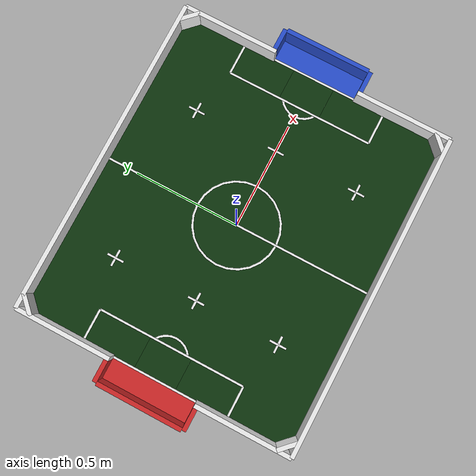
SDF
<?xml version="1.0" ?>
<sdf version="1.6">
  <model name="campo_vss">
    <static>true</static>
    <link name="link">
      <visual name="base_visual">
        <geometry>
          <box>
            <size>1.5 1.3 0.01</size>
          </box>
        </geometry>
        <material>
          <ambient>0.05 0.2 0.05 1</ambient>
          <diffuse>0.05 0.2 0.05 1</diffuse>
        </material>
      </visual>
      <collision name="base_collision">
        <geometry>
          <box>
            <size>1.5 1.3 0.01</size>
          </box>
        </geometry>
      </collision>

      <!-- Parede Norte -->
      <visual name="wall_north_visual">
        <pose>0 0.65 0.05 0 0 0</pose>
        <geometry><box><size>1.5 0.02 0.1</size></box></geometry>
        <material><script><name>Gazebo/White</name></script></material>
      </visual>
      <collision name="wall_north_collision">
        <pose>0 0.65 0.05 0 0 0</pose>
        <geometry><box><size>1.5 0.02 0.1</size></box></geometry>
      </collision>

      <!-- Parede Sul -->
      <visual name="wall_south_visual">
        <pose>0 -0.65 0.05 0 0 0</pose>
        <geometry><box><size>1.5 0.02 0.1</size></box></geometry>
        <material><script><name>Gazebo/White</name></script></material>
      </visual>
      <collision name="wall_south_collision">
        <pose>0 -0.65 0.05 0 0 0</pose>
        <geometry><box><size>1.5 0.02 0.1</size></box></geometry>
      </collision>

      <!-- Parede Oeste/Norte -->
      <visual name="wall_west_north_visual">
        <pose>-0.75 0.425 0.05 0 0 0</pose>
        <geometry><box><size>0.02 0.45 0.1</size></box></geometry>
        <material><script><name>Gazebo/White</name></script></material>
      </visual>
      <collision name="wall_west_north_collision">
        <pose>-0.75 0.425 0.05 0 0 0</pose>
        <geometry><box><size>0.02 0.45 0.1</size></box></geometry>
      </collision>

      <!-- Escanteio Oeste/Norte-->
      <visual name="wall_west_north_corner_visual">
        <pose>-0.715 0.615 0.05 0 0 0.785</pose>
        <geometry><box><size>0.0989 0.02 0.1</size></box></geometry>
        <material><script><name>Gazebo/White</name></script></material>
      </visual>
      <collision name="wall_west_north_corner_collision">
        <pose>-0.715 0.615 0.05 0 0 0.785</pose>
        <geometry><box><size>0.0989 0.02 0.1</size></box></geometry>
      </collision>

      <!-- Parede Oeste/Sul -->
      <visual name="wall_west_south_visual">
        <pose>-0.75 -0.425 0.05 0 0 0</pose>
        <geometry><box><size>0.02 0.45 0.1</size></box></geometry>
        <material><script><name>Gazebo/White</name></script></material>
      </visual>
      <collision name="wall_west_south_collision">
        <pose>-0.75 -0.425 0.05 0 0 0</pose>
        <geometry><box><size>0.02 0.45 0.1</size></box></geometry>
      </collision>

      <!-- Escanteio Oeste/Sul -->
      <visual name="wall_west_south_corner_visual">
        <pose>-0.715 -0.615 0.05 0 0 -0.785</pose>
        <geometry><box><size>0.0989 0.02 0.1</size></box></geometry>
        <material><script><name>Gazebo/White</name></script></material>
      </visual>
      <collision name="wall_west_south_corner_collision">
        <pose>-0.715 -0.615 0.05 0 0 -0.785</pose>
        <geometry><box><size>0.0989 0.02 0.1</size></box></geometry>
      </collision>

      <!-- Parede Leste/Norte -->
      <visual name="wall_east_north_visual">
        <pose>0.75 0.425 0.05 0 0 0</pose>
        <geometry><box><size>0.02 0.45 0.1</size></box></geometry>
        <material><script><name>Gazebo/White</name></script></material>
      </visual>
      <collision name="wall_east_north_collision">
        <pose>0.75 0.425 0.05 0 0 0</pose>
        <geometry><box><size>0.02 0.45 0.1</size></box></geometry>
      </collision>

      <!-- Escantei Leste/Norte -->
      <visual name="wall_east_north_corner_visual">
        <pose>0.715 0.615 0.05 0 0 -0.785</pose>
        <geometry><box><size>0.0989 0.02 0.1</size></box></geometry>
        <material><script><name>Gazebo/White</name></script></material>
      </visual>
      <collision name="wall_east_north_corner_collision">
        <pose>0.715 0.615 0.05 0 0 -0.785</pose>
        <geometry><box><size>0.0989 0.02 0.1</size></box></geometry>
      </collision>

      <visual name="wall_east_south_visual">
        <pose>0.75 -0.425 0.05 0 0 0</pose>
        <geometry><box><size>0.02 0.45 0.1</size></box></geometry>
        <material><script><name>Gazebo/White</name></script></material>
      </visual>
      <collision name="wall_east_south_collision">
        <pose>0.75 -0.425 0.05 0 0 0</pose>
        <geometry><box><size>0.02 0.45 0.1</size></box></geometry>
      </collision>

      <visual name="wall_east_south_corner_visual">
        <pose>0.715 -0.615 0.05 0 0 0.785</pose>
        <geometry><box><size>0.0989 0.02 0.1</size></box></geometry>
        <material><script><name>Gazebo/White</name></script></material>
      </visual>
      <collision name="wall_east_south_corner_collision">
        <pose>0.715 -0.615 0.05 0 0 0.785</pose>
        <geometry><box><size>0.0989 0.02 0.1</size></box></geometry>
      </collision>

      <visual name="goal_west_floor_visual">
        <pose>-0.8 0 0 0 0 0</pose>
        <geometry><box><size>0.1 0.4 0.01</size></box></geometry>
        <material><script><name>Gazebo/Red</name></script></material>
      </visual>
      <collision name="goal_west_floor_collision">
        <pose>-0.8 0 0 0 0 0</pose>
        <geometry><box><size>0.1 0.4 0.01</size></box></geometry>
      </collision>
      <visual name="goal_west_wall_01_visual">
        <pose>-0.86 0 0.05 0 0 0</pose>
        <geometry><box><size>0.02 0.4 0.1</size></box></geometry>
        <material><script><name>Gazebo/Red</name></script></material>
      </visual>
      <collision name="goal_west_wall_01_collision">
        <pose>-0.86 0 0.05 0 0 0</pose>
        <geometry><box><size>0.4 0.02 0.1</size></box></geometry>
      </collision>
      <visual name="goal_west_wall_02_visual">
        <pose>-0.81 0.21 0.05 0 0 1.57</pose>
        <geometry><box><size>0.02 0.1 0.1</size></box></geometry>
        <material><script><name>Gazebo/Red</name></script></material>
      </visual>
      <collision name="goal_west_wall_02_collision">
        <pose>-0.81 0.21 0.05 0 0 1.57</pose>
        <geometry><box><size>0.02 0.1 0.1</size></box></geometry>
      </collision>
      <visual name="goal_west_wall_03_visual">
        <pose>-0.81 -0.21 0.05 0 0 1.57</pose>
        <geometry><box><size>0.02 0.1 0.1</size></box></geometry>
        <material><script><name>Gazebo/Red</name></script></material>
      </visual>
      <collision name="goal_west_wall_03_collision">
        <pose>-0.81 -0.21 0.05 0 0 1.57</pose>
        <geometry><box><size>0.02 0.1 0.1</size></box></geometry>
      </collision>

      <visual name="goal_east_floor_visual">
        <pose>0.8 0 0 0 0 0</pose>
        <geometry><box><size>0.1 0.4 0.01</size></box></geometry>
        <material><script><name>Gazebo/Blue</name></script></material>
      </visual>
      <collision name="goal_east_floor_collision">
        <pose>0.8 0 0 0 0 0</pose>
        <geometry><box><size>0.1 0.4 0.01</size></box></geometry>
      </collision>
      <visual name="goal_east_wall_01_visual">
        <pose>0.86 0 0.05 0 0 0</pose>
        <geometry><box><size>0.02 0.4 0.1</size></box></geometry>
        <material><script><name>Gazebo/Blue</name></script></material>
      </visual>
      <collision name="goal_east_wall_01_collision">
        <pose>0.86 0 0.05 0 0 0</pose>
        <geometry><box><size>0.4 0.02 0.1</size></box></geometry>
      </collision>
      <visual name="goal_east_wall_02_visual">
        <pose>0.81 0.21 0.05 0 0 1.57</pose>
        <geometry><box><size>0.02 0.1 0.1</size></box></geometry>
        <material><script><name>Gazebo/Blue</name></script></material>
      </visual>
      <collision name="goal_east_wall_02_collision">
        <pose>0.81 0.21 0.05 0 0 1.57</pose>
        <geometry><box><size>0.02 0.1 0.1</size></box></geometry>
      </collision>
      <visual name="goal_east_wall_03_visual">
        <pose>0.81 -0.21 0.05 0 0 1.57</pose>
        <geometry><box><size>0.02 0.1 0.1</size></box></geometry>
        <material><script><name>Gazebo/Blue</name></script></material>
      </visual>
      <collision name="goal_east_wall_03_collision">
        <pose>0.81 -0.21 0.05 0 0 1.57</pose>
        <geometry><box><size>0.02 0.1 0.1</size></box></geometry>
      </collision>

      <visual name="line_center_visual">
        <pose>0 0 0.007 0 0 0</pose>
        <geometry><box><size>0.01 1.3 0.001</size></box></geometry>
        <material><script><name>Gazebo/White</name></script></material>
      </visual>

      <visual name="circle_center_visual">
          <pose>0 0 0.006 0 0 0</pose>
          <geometry>
            <cylinder>
              <radius>0.2</radius>
              <length>0.001</length>
            </cylinder>
          </geometry>
          <material><script><name>Gazebo/White</name></script></material>
      </visual>
      <visual name="circle_center_fill_visual">
          <pose>0 0 0.0065 0 0 0</pose>
          <geometry>
            <cylinder>
              <radius>0.19</radius>
              <length>0.001</length>
            </cylinder>
          </geometry>
          <material>
              <ambient>0.05 0.2 0.05 1</ambient>
              <diffuse>0.05 0.2 0.05 1</diffuse>
          </material>
      </visual>

      <visual name="line_north_visual">
        <pose>0 0.65 0.006 0 0 0</pose>
        <geometry><box><size>1.5 0.01 0.001</size></box></geometry>
        <material><script><name>Gazebo/White</name></script></material>
      </visual>
      <visual name="line_south_visual">
        <pose>0 -0.65 0.006 0 0 0</pose>
        <geometry><box><size>1.5 0.01 0.001</size></box></geometry>
        <material><script><name>Gazebo/White</name></script></material>
      </visual>

      <visual name="line_west_visual">
        <pose>-0.75 0 0.006 0 0 0</pose>
        <geometry><box><size>0.01 1.3 0.001</size></box></geometry>
        <material><script><name>Gazebo/White</name></script></material>
      </visual>
      <visual name="line_east_visual">
        <pose>0.75 0 0.006 0 0 0</pose>
        <geometry><box><size>0.01 1.3 0.001</size></box></geometry>
        <material><script><name>Gazebo/White</name></script></material>
      </visual>

      <visual name="area_west_1_visual">
        <pose>-0.675 0.35 0.006 0 0 0</pose>
        <geometry><box><size>0.15 0.01 0.001</size></box></geometry>
        <material><script><name>Gazebo/White</name></script></material>
      </visual>
       <visual name="area_west_2_visual">
        <pose>-0.675 -0.35 0.006 0 0 0</pose>
        <geometry><box><size>0.15 0.01 0.001</size></box></geometry>
        <material><script><name>Gazebo/White</name></script></material>
      </visual>
       <visual name="area_west_3_visual">
        <pose>-0.6 0 0.006 0 0 1.57</pose>
        <geometry><box><size>0.7 0.01 0.001</size></box></geometry>
        <material><script><name>Gazebo/White</name></script></material>
      </visual>
      <visual name="semi_circle_area_west_visual">
          <pose>-0.65 0 0.005 0 0 0</pose>
          <geometry>
            <cylinder>
              <radius>0.1</radius>
              <length>0.001</length>
            </cylinder>
          </geometry>
          <material><script><name>Gazebo/White</name></script></material>
      </visual>
      <visual name="semi_circle_area_west_fill_01_visual">
          <pose>-0.65 0 0.0055 0 0 0</pose>
          <geometry>
            <cylinder>
              <radius>0.09</radius>
              <length>0.001</length>
            </cylinder>
          </geometry>
          <material>
              <ambient>0.05 0.2 0.05 1</ambient>
              <diffuse>0.05 0.2 0.05 1</diffuse>
          </material>
      </visual>
      <visual name="semi_circle_area_west_fill_02_visual">
        <pose>-0.675 0 0.006 0 0 1.57</pose>
        <geometry><box><size>0.2 0.14 0.001</size></box></geometry>
        <material>
          <ambient>0.05 0.2 0.05 1</ambient>
          <diffuse>0.05 0.2 0.05 1</diffuse>
        </material>
      </visual>

      <visual name="area_east_1_visual">
        <pose>0.675 0.35 0.006 0 0 0</pose>
        <geometry><box><size>0.15 0.01 0.001</size></box></geometry>
        <material><script><name>Gazebo/White</name></script></material>
      </visual>
      <visual name="area_east_2_visual">
        <pose>0.675 -0.35 0.006 0 0 0</pose>
        <geometry><box><size>0.15 0.01 0.001</size></box></geometry>
        <material><script><name>Gazebo/White</name></script></material>
      </visual>
       <visual name="area_east_3_visual">
        <pose>0.6 0 0.006 0 0 1.57</pose>
        <geometry><box><size>0.7 0.01 0.001</size></box></geometry>
        <material><script><name>Gazebo/White</name></script></material>
      </visual>
      <visual name="semi_circle_area_east_visual">
          <pose>0.65 0 0.005 0 0 0</pose>
          <geometry>
            <cylinder>
              <radius>0.1</radius>
              <length>0.001</length>
            </cylinder>
          </geometry>
          <material><script><name>Gazebo/White</name></script></material>
      </visual>
      <visual name="semi_circle_area_east_fill_01_visual">
          <pose>0.65 0 0.0055 0 0 0</pose>
          <geometry>
            <cylinder>
              <radius>0.09</radius>
              <length>0.001</length>
            </cylinder>
          </geometry>
          <material>
              <ambient>0.05 0.2 0.05 1</ambient>
              <diffuse>0.05 0.2 0.05 1</diffuse>
          </material>
      </visual>
      <visual name="semi_circle_area_east_fill_02_visual">
        <pose>0.675 0 0.006 0 0 1.57</pose>
        <geometry><box><size>0.2 0.14 0.001</size></box></geometry>
        <material>
          <ambient>0.05 0.2 0.05 1</ambient>
          <diffuse>0.05 0.2 0.05 1</diffuse>
        </material>
      </visual>

      <visual name="line01_cross_east_center_visual">
        <pose>0.375 0 0.006 0 0 0</pose>
        <geometry><box><size>0.08 0.01 0.001</size></box></geometry>
        <material><script><name>Gazebo/White</name></script></material>
      </visual>
      <visual name="line02_cross_east_center_visual">
        <pose>0.375 0 0.006 0 0 1.57</pose>
        <geometry><box><size>0.08 0.01 0.001</size></box></geometry>
        <material><script><name>Gazebo/White</name></script></material>
      </visual>
      <visual name="line01_cross_east_north_visual">
        <pose>0.375 0.4 0.006 0 0 0</pose>
        <geometry><box><size>0.08 0.01 0.001</size></box></geometry>
        <material><script><name>Gazebo/White</name></script></material>
      </visual>
      <visual name="line02_cross_east_north_visual">
        <pose>0.375 0.4 0.006 0 0 1.57</pose>
        <geometry><box><size>0.08 0.01 0.001</size></box></geometry>
        <material><script><name>Gazebo/White</name></script></material>
      </visual>
      <visual name="line01_cross_east_south_visual">
        <pose>0.375 -0.4 0.006 0 0 0</pose>
        <geometry><box><size>0.08 0.01 0.001</size></box></geometry>
        <material><script><name>Gazebo/White</name></script></material>
      </visual>
      <visual name="line02_cross_east_south_visual">
        <pose>0.375 -0.4 0.006 0 0 1.57</pose>
        <geometry><box><size>0.08 0.01 0.001</size></box></geometry>
        <material><script><name>Gazebo/White</name></script></material>
      </visual>

      <visual name="line01_cross_west_center_visual">
        <pose>-0.375 0 0.006 0 0 0</pose>
        <geometry><box><size>0.08 0.01 0.001</size></box></geometry>
        <material><script><name>Gazebo/White</name></script></material>
      </visual>
      <visual name="line02_cross_west_center_visual">
        <pose>-0.375 0 0.006 0 0 1.57</pose>
        <geometry><box><size>0.08 0.01 0.001</size></box></geometry>
        <material><script><name>Gazebo/White</name></script></material>
      </visual>
      <visual name="line01_cross_west_north_visual">
        <pose>-0.375 0.4 0.006 0 0 0</pose>
        <geometry><box><size>0.08 0.01 0.001</size></box></geometry>
        <material><script><name>Gazebo/White</name></script></material>
      </visual>
      <visual name="line02_cross_west_north_visual">
        <pose>-0.375 0.4 0.006 0 0 1.57</pose>
        <geometry><box><size>0.08 0.01 0.001</size></box></geometry>
        <material><script><name>Gazebo/White</name></script></material>
      </visual>
      <visual name="line01_cross_west_south_visual">
        <pose>-0.375 -0.4 0.006 0 0 0</pose>
        <geometry><box><size>0.08 0.01 0.001</size></box></geometry>
        <material><script><name>Gazebo/White</name></script></material>
      </visual>
      <visual name="line02_cross_west_south_visual">
        <pose>-0.375 -0.4 0.006 0 0 1.57</pose>
        <geometry><box><size>0.08 0.01 0.001</size></box></geometry>
        <material><script><name>Gazebo/White</name></script></material>
      </visual>

    </link>
  </model>
</sdf>
